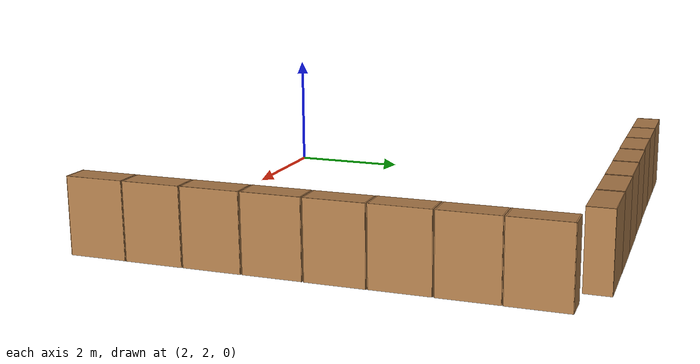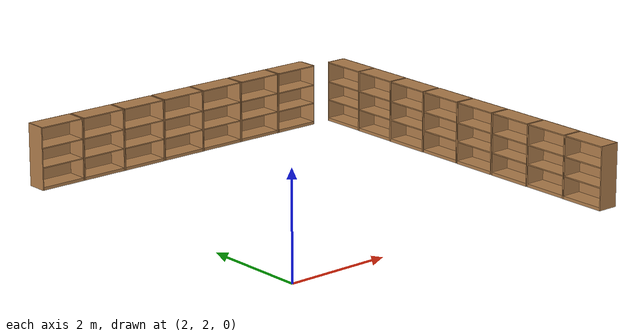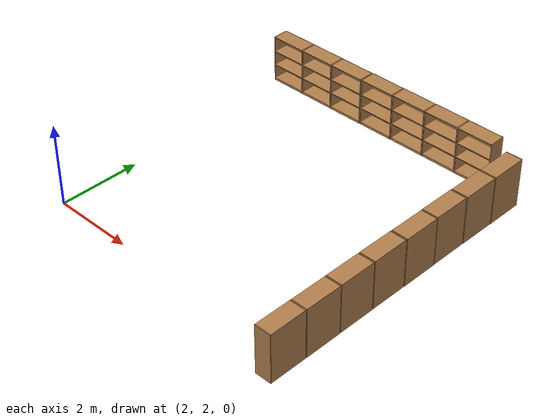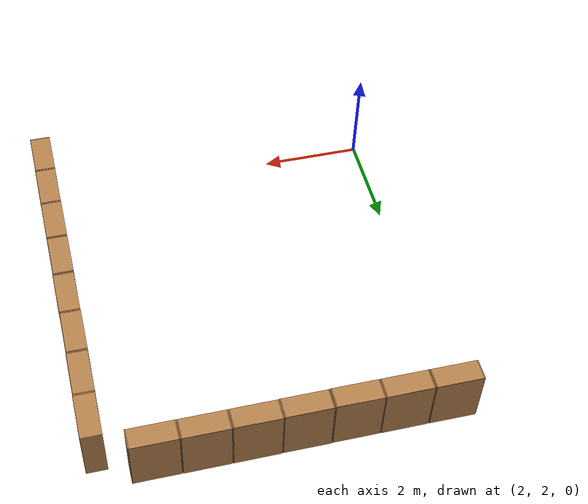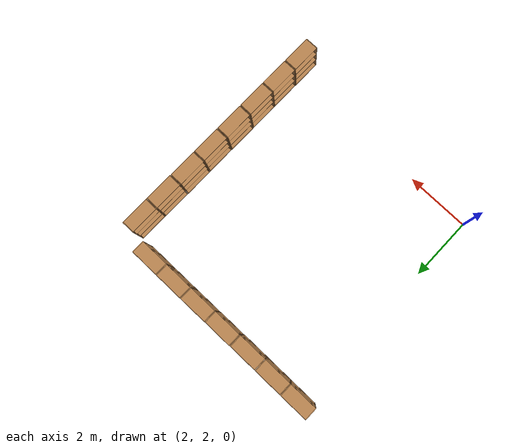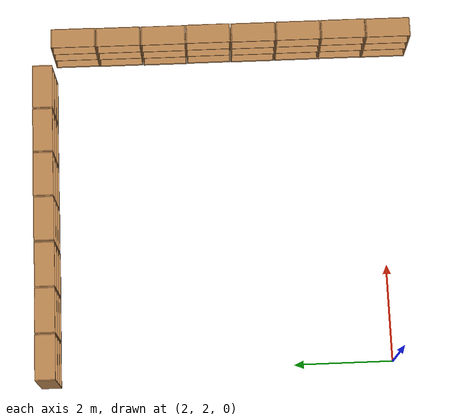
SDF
<sdf version="1.7">
 <world name="default">
  <model name="bookshelf_clone_clone_9">
   <static>1</static>
   <link name="link">
    <inertial><mass>1</mass></inertial>
    <collision name="back">
     <pose>0 0.005 0.6 0 -0 0</pose>
     <geometry><box><size>0.9 0.01 1.2</size></box></geometry>
    </collision>
    <visual name="visual1">
     <pose>0 0.005 0.6 0 -0 0</pose>
     <geometry><box><size>0.9 0.01 1.2</size></box></geometry>
     <material>
      <script><uri>file://media/materials/scripts/gazebo.material</uri><name>Gazebo/Wood</name></script>
     </material>
    </visual>
    <collision name="left_side">
     <pose>0.45 -0.195 0.6 0 -0 0</pose>
     <geometry><box><size>0.02 0.4 1.2</size></box></geometry>
    </collision>
    <visual name="visual2">
     <pose>0.45 -0.195 0.6 0 -0 0</pose>
     <geometry><box><size>0.02 0.4 1.2</size></box></geometry>
     <material>
      <script><uri>file://media/materials/scripts/gazebo.material</uri><name>Gazebo/Wood</name></script>
     </material>
    </visual>
    <collision name="right_side">
     <pose>-0.45 -0.195 0.6 0 -0 0</pose>
     <geometry><box><size>0.02 0.4 1.2</size></box></geometry>
    </collision>
    <visual name="visual3">
     <pose>-0.45 -0.195 0.6 0 -0 0</pose>
     <geometry><box><size>0.02 0.4 1.2</size></box></geometry>
     <material>
      <script><uri>file://media/materials/scripts/gazebo.material</uri><name>Gazebo/Wood</name></script>
     </material>
    </visual>
    <collision name="bottom">
     <pose>0 -0.195 0.03 0 -0 0</pose>
     <geometry><box><size>0.88 0.4 0.06</size></box></geometry>
    </collision>
    <visual name="visual4">
     <pose>0 -0.195 0.03 0 -0 0</pose>
     <geometry><box><size>0.88 0.4 0.06</size></box></geometry>
     <material>
      <script><uri>file://media/materials/scripts/gazebo.material</uri><name>Gazebo/Wood</name></script>
     </material>
    </visual>
    <collision name="top">
     <pose>0 -0.195 1.19 0 -0 0</pose>
     <geometry><box><size>0.88 0.4 0.02</size></box></geometry>
    </collision>
    <visual name="visual5">
     <pose>0 -0.195 1.19 0 -0 0</pose>
     <geometry><box><size>0.88 0.4 0.02</size></box></geometry>
     <material>
      <script><uri>file://media/materials/scripts/gazebo.material</uri><name>Gazebo/Wood</name></script>
     </material>
    </visual>
    <collision name="low_shelf">
     <pose>0 -0.195 0.43 0 -0 0</pose>
     <geometry><box><size>0.88 0.4 0.02</size></box></geometry>
    </collision>
    <visual name="visual6">
     <pose>0 -0.195 0.43 0 -0 0</pose>
     <geometry><box><size>0.88 0.4 0.02</size></box></geometry>
     <material>
      <script><uri>file://media/materials/scripts/gazebo.material</uri><name>Gazebo/Wood</name></script>
     </material>
    </visual>
    <collision name="high_shelf">
     <pose>0 -0.195 0.8 0 -0 0</pose>
     <geometry><box><size>0.88 0.4 0.02</size></box></geometry>
    </collision>
    <visual name="visual7">
     <pose>0 -0.195 0.8 0 -0 0</pose>
     <geometry><box><size>0.88 0.4 0.02</size></box></geometry>
     <material>
      <script><uri>file://media/materials/scripts/gazebo.material</uri><name>Gazebo/Wood</name></script>
     </material>
    </visual>
   </link>
   <pose>2.17586 9.11063 0 0 -0 0</pose>
  </model>
  <model name="bookshelf_clone_clone_10">
   <static>1</static>
   <link name="link">
    <inertial><mass>1</mass></inertial>
    <collision name="back">
     <pose>0 0.005 0.6 0 -0 0</pose>
     <geometry><box><size>0.9 0.01 1.2</size></box></geometry>
    </collision>
    <visual name="visual1">
     <pose>0 0.005 0.6 0 -0 0</pose>
     <geometry><box><size>0.9 0.01 1.2</size></box></geometry>
     <material>
      <script><uri>file://media/materials/scripts/gazebo.material</uri><name>Gazebo/Wood</name></script>
     </material>
    </visual>
    <collision name="left_side">
     <pose>0.45 -0.195 0.6 0 -0 0</pose>
     <geometry><box><size>0.02 0.4 1.2</size></box></geometry>
    </collision>
    <visual name="visual2">
     <pose>0.45 -0.195 0.6 0 -0 0</pose>
     <geometry><box><size>0.02 0.4 1.2</size></box></geometry>
     <material>
      <script><uri>file://media/materials/scripts/gazebo.material</uri><name>Gazebo/Wood</name></script>
     </material>
    </visual>
    <collision name="right_side">
     <pose>-0.45 -0.195 0.6 0 -0 0</pose>
     <geometry><box><size>0.02 0.4 1.2</size></box></geometry>
    </collision>
    <visual name="visual3">
     <pose>-0.45 -0.195 0.6 0 -0 0</pose>
     <geometry><box><size>0.02 0.4 1.2</size></box></geometry>
     <material>
      <script><uri>file://media/materials/scripts/gazebo.material</uri><name>Gazebo/Wood</name></script>
     </material>
    </visual>
    <collision name="bottom">
     <pose>0 -0.195 0.03 0 -0 0</pose>
     <geometry><box><size>0.88 0.4 0.06</size></box></geometry>
    </collision>
    <visual name="visual4">
     <pose>0 -0.195 0.03 0 -0 0</pose>
     <geometry><box><size>0.88 0.4 0.06</size></box></geometry>
     <material>
      <script><uri>file://media/materials/scripts/gazebo.material</uri><name>Gazebo/Wood</name></script>
     </material>
    </visual>
    <collision name="top">
     <pose>0 -0.195 1.19 0 -0 0</pose>
     <geometry><box><size>0.88 0.4 0.02</size></box></geometry>
    </collision>
    <visual name="visual5">
     <pose>0 -0.195 1.19 0 -0 0</pose>
     <geometry><box><size>0.88 0.4 0.02</size></box></geometry>
     <material>
      <script><uri>file://media/materials/scripts/gazebo.material</uri><name>Gazebo/Wood</name></script>
     </material>
    </visual>
    <collision name="low_shelf">
     <pose>0 -0.195 0.43 0 -0 0</pose>
     <geometry><box><size>0.88 0.4 0.02</size></box></geometry>
    </collision>
    <visual name="visual6">
     <pose>0 -0.195 0.43 0 -0 0</pose>
     <geometry><box><size>0.88 0.4 0.02</size></box></geometry>
     <material>
      <script><uri>file://media/materials/scripts/gazebo.material</uri><name>Gazebo/Wood</name></script>
     </material>
    </visual>
    <collision name="high_shelf">
     <pose>0 -0.195 0.8 0 -0 0</pose>
     <geometry><box><size>0.88 0.4 0.02</size></box></geometry>
    </collision>
    <visual name="visual7">
     <pose>0 -0.195 0.8 0 -0 0</pose>
     <geometry><box><size>0.88 0.4 0.02</size></box></geometry>
     <material>
      <script><uri>file://media/materials/scripts/gazebo.material</uri><name>Gazebo/Wood</name></script>
     </material>
    </visual>
   </link>
   <pose>3.10502 9.11011 0 0 -0 0</pose>
  </model>
  <model name="bookshelf_clone_clone_11">
   <static>1</static>
   <link name="link">
    <inertial><mass>1</mass></inertial>
    <collision name="back">
     <pose>0 0.005 0.6 0 -0 0</pose>
     <geometry><box><size>0.9 0.01 1.2</size></box></geometry>
    </collision>
    <visual name="visual1">
     <pose>0 0.005 0.6 0 -0 0</pose>
     <geometry><box><size>0.9 0.01 1.2</size></box></geometry>
     <material>
      <script><uri>file://media/materials/scripts/gazebo.material</uri><name>Gazebo/Wood</name></script>
     </material>
    </visual>
    <collision name="left_side">
     <pose>0.45 -0.195 0.6 0 -0 0</pose>
     <geometry><box><size>0.02 0.4 1.2</size></box></geometry>
    </collision>
    <visual name="visual2">
     <pose>0.45 -0.195 0.6 0 -0 0</pose>
     <geometry><box><size>0.02 0.4 1.2</size></box></geometry>
     <material>
      <script><uri>file://media/materials/scripts/gazebo.material</uri><name>Gazebo/Wood</name></script>
     </material>
    </visual>
    <collision name="right_side">
     <pose>-0.45 -0.195 0.6 0 -0 0</pose>
     <geometry><box><size>0.02 0.4 1.2</size></box></geometry>
    </collision>
    <visual name="visual3">
     <pose>-0.45 -0.195 0.6 0 -0 0</pose>
     <geometry><box><size>0.02 0.4 1.2</size></box></geometry>
     <material>
      <script><uri>file://media/materials/scripts/gazebo.material</uri><name>Gazebo/Wood</name></script>
     </material>
    </visual>
    <collision name="bottom">
     <pose>0 -0.195 0.03 0 -0 0</pose>
     <geometry><box><size>0.88 0.4 0.06</size></box></geometry>
    </collision>
    <visual name="visual4">
     <pose>0 -0.195 0.03 0 -0 0</pose>
     <geometry><box><size>0.88 0.4 0.06</size></box></geometry>
     <material>
      <script><uri>file://media/materials/scripts/gazebo.material</uri><name>Gazebo/Wood</name></script>
     </material>
    </visual>
    <collision name="top">
     <pose>0 -0.195 1.19 0 -0 0</pose>
     <geometry><box><size>0.88 0.4 0.02</size></box></geometry>
    </collision>
    <visual name="visual5">
     <pose>0 -0.195 1.19 0 -0 0</pose>
     <geometry><box><size>0.88 0.4 0.02</size></box></geometry>
     <material>
      <script><uri>file://media/materials/scripts/gazebo.material</uri><name>Gazebo/Wood</name></script>
     </material>
    </visual>
    <collision name="low_shelf">
     <pose>0 -0.195 0.43 0 -0 0</pose>
     <geometry><box><size>0.88 0.4 0.02</size></box></geometry>
    </collision>
    <visual name="visual6">
     <pose>0 -0.195 0.43 0 -0 0</pose>
     <geometry><box><size>0.88 0.4 0.02</size></box></geometry>
     <material>
      <script><uri>file://media/materials/scripts/gazebo.material</uri><name>Gazebo/Wood</name></script>
     </material>
    </visual>
    <collision name="high_shelf">
     <pose>0 -0.195 0.8 0 -0 0</pose>
     <geometry><box><size>0.88 0.4 0.02</size></box></geometry>
    </collision>
    <visual name="visual7">
     <pose>0 -0.195 0.8 0 -0 0</pose>
     <geometry><box><size>0.88 0.4 0.02</size></box></geometry>
     <material>
      <script><uri>file://media/materials/scripts/gazebo.material</uri><name>Gazebo/Wood</name></script>
     </material>
    </visual>
   </link>
   <pose>4.0312 9.10852 0 0 -0 0</pose>
  </model>
  <model name="bookshelf_clone_clone_12">
   <static>1</static>
   <link name="link">
    <inertial><mass>1</mass></inertial>
    <collision name="back">
     <pose>0 0.005 0.6 0 -0 0</pose>
     <geometry><box><size>0.9 0.01 1.2</size></box></geometry>
    </collision>
    <visual name="visual1">
     <pose>0 0.005 0.6 0 -0 0</pose>
     <geometry><box><size>0.9 0.01 1.2</size></box></geometry>
     <material>
      <script><uri>file://media/materials/scripts/gazebo.material</uri><name>Gazebo/Wood</name></script>
     </material>
    </visual>
    <collision name="left_side">
     <pose>0.45 -0.195 0.6 0 -0 0</pose>
     <geometry><box><size>0.02 0.4 1.2</size></box></geometry>
    </collision>
    <visual name="visual2">
     <pose>0.45 -0.195 0.6 0 -0 0</pose>
     <geometry><box><size>0.02 0.4 1.2</size></box></geometry>
     <material>
      <script><uri>file://media/materials/scripts/gazebo.material</uri><name>Gazebo/Wood</name></script>
     </material>
    </visual>
    <collision name="right_side">
     <pose>-0.45 -0.195 0.6 0 -0 0</pose>
     <geometry><box><size>0.02 0.4 1.2</size></box></geometry>
    </collision>
    <visual name="visual3">
     <pose>-0.45 -0.195 0.6 0 -0 0</pose>
     <geometry><box><size>0.02 0.4 1.2</size></box></geometry>
     <material>
      <script><uri>file://media/materials/scripts/gazebo.material</uri><name>Gazebo/Wood</name></script>
     </material>
    </visual>
    <collision name="bottom">
     <pose>0 -0.195 0.03 0 -0 0</pose>
     <geometry><box><size>0.88 0.4 0.06</size></box></geometry>
    </collision>
    <visual name="visual4">
     <pose>0 -0.195 0.03 0 -0 0</pose>
     <geometry><box><size>0.88 0.4 0.06</size></box></geometry>
     <material>
      <script><uri>file://media/materials/scripts/gazebo.material</uri><name>Gazebo/Wood</name></script>
     </material>
    </visual>
    <collision name="top">
     <pose>0 -0.195 1.19 0 -0 0</pose>
     <geometry><box><size>0.88 0.4 0.02</size></box></geometry>
    </collision>
    <visual name="visual5">
     <pose>0 -0.195 1.19 0 -0 0</pose>
     <geometry><box><size>0.88 0.4 0.02</size></box></geometry>
     <material>
      <script><uri>file://media/materials/scripts/gazebo.material</uri><name>Gazebo/Wood</name></script>
     </material>
    </visual>
    <collision name="low_shelf">
     <pose>0 -0.195 0.43 0 -0 0</pose>
     <geometry><box><size>0.88 0.4 0.02</size></box></geometry>
    </collision>
    <visual name="visual6">
     <pose>0 -0.195 0.43 0 -0 0</pose>
     <geometry><box><size>0.88 0.4 0.02</size></box></geometry>
     <material>
      <script><uri>file://media/materials/scripts/gazebo.material</uri><name>Gazebo/Wood</name></script>
     </material>
    </visual>
    <collision name="high_shelf">
     <pose>0 -0.195 0.8 0 -0 0</pose>
     <geometry><box><size>0.88 0.4 0.02</size></box></geometry>
    </collision>
    <visual name="visual7">
     <pose>0 -0.195 0.8 0 -0 0</pose>
     <geometry><box><size>0.88 0.4 0.02</size></box></geometry>
     <material>
      <script><uri>file://media/materials/scripts/gazebo.material</uri><name>Gazebo/Wood</name></script>
     </material>
    </visual>
   </link>
   <pose>4.96631 9.11548 0 0 -0 0</pose>
  </model>
  <model name="bookshelf_clone_clone_13">
   <static>1</static>
   <link name="link">
    <inertial><mass>1</mass></inertial>
    <collision name="back">
     <pose>0 0.005 0.6 0 -0 0</pose>
     <geometry><box><size>0.9 0.01 1.2</size></box></geometry>
    </collision>
    <visual name="visual1">
     <pose>0 0.005 0.6 0 -0 0</pose>
     <geometry><box><size>0.9 0.01 1.2</size></box></geometry>
     <material>
      <script><uri>file://media/materials/scripts/gazebo.material</uri><name>Gazebo/Wood</name></script>
     </material>
    </visual>
    <collision name="left_side">
     <pose>0.45 -0.195 0.6 0 -0 0</pose>
     <geometry><box><size>0.02 0.4 1.2</size></box></geometry>
    </collision>
    <visual name="visual2">
     <pose>0.45 -0.195 0.6 0 -0 0</pose>
     <geometry><box><size>0.02 0.4 1.2</size></box></geometry>
     <material>
      <script><uri>file://media/materials/scripts/gazebo.material</uri><name>Gazebo/Wood</name></script>
     </material>
    </visual>
    <collision name="right_side">
     <pose>-0.45 -0.195 0.6 0 -0 0</pose>
     <geometry><box><size>0.02 0.4 1.2</size></box></geometry>
    </collision>
    <visual name="visual3">
     <pose>-0.45 -0.195 0.6 0 -0 0</pose>
     <geometry><box><size>0.02 0.4 1.2</size></box></geometry>
     <material>
      <script><uri>file://media/materials/scripts/gazebo.material</uri><name>Gazebo/Wood</name></script>
     </material>
    </visual>
    <collision name="bottom">
     <pose>0 -0.195 0.03 0 -0 0</pose>
     <geometry><box><size>0.88 0.4 0.06</size></box></geometry>
    </collision>
    <visual name="visual4">
     <pose>0 -0.195 0.03 0 -0 0</pose>
     <geometry><box><size>0.88 0.4 0.06</size></box></geometry>
     <material>
      <script><uri>file://media/materials/scripts/gazebo.material</uri><name>Gazebo/Wood</name></script>
     </material>
    </visual>
    <collision name="top">
     <pose>0 -0.195 1.19 0 -0 0</pose>
     <geometry><box><size>0.88 0.4 0.02</size></box></geometry>
    </collision>
    <visual name="visual5">
     <pose>0 -0.195 1.19 0 -0 0</pose>
     <geometry><box><size>0.88 0.4 0.02</size></box></geometry>
     <material>
      <script><uri>file://media/materials/scripts/gazebo.material</uri><name>Gazebo/Wood</name></script>
     </material>
    </visual>
    <collision name="low_shelf">
     <pose>0 -0.195 0.43 0 -0 0</pose>
     <geometry><box><size>0.88 0.4 0.02</size></box></geometry>
    </collision>
    <visual name="visual6">
     <pose>0 -0.195 0.43 0 -0 0</pose>
     <geometry><box><size>0.88 0.4 0.02</size></box></geometry>
     <material>
      <script><uri>file://media/materials/scripts/gazebo.material</uri><name>Gazebo/Wood</name></script>
     </material>
    </visual>
    <collision name="high_shelf">
     <pose>0 -0.195 0.8 0 -0 0</pose>
     <geometry><box><size>0.88 0.4 0.02</size></box></geometry>
    </collision>
    <visual name="visual7">
     <pose>0 -0.195 0.8 0 -0 0</pose>
     <geometry><box><size>0.88 0.4 0.02</size></box></geometry>
     <material>
      <script><uri>file://media/materials/scripts/gazebo.material</uri><name>Gazebo/Wood</name></script>
     </material>
    </visual>
   </link>
   <pose>5.89275 9.12087 0 0 -0 0</pose>
  </model>
  <model name="bookshelf_clone_clone_14">
   <static>1</static>
   <link name="link">
    <inertial><mass>1</mass></inertial>
    <collision name="back">
     <pose>0 0.005 0.6 0 -0 0</pose>
     <geometry><box><size>0.9 0.01 1.2</size></box></geometry>
    </collision>
    <visual name="visual1">
     <pose>0 0.005 0.6 0 -0 0</pose>
     <geometry><box><size>0.9 0.01 1.2</size></box></geometry>
     <material>
      <script><uri>file://media/materials/scripts/gazebo.material</uri><name>Gazebo/Wood</name></script>
     </material>
    </visual>
    <collision name="left_side">
     <pose>0.45 -0.195 0.6 0 -0 0</pose>
     <geometry><box><size>0.02 0.4 1.2</size></box></geometry>
    </collision>
    <visual name="visual2">
     <pose>0.45 -0.195 0.6 0 -0 0</pose>
     <geometry><box><size>0.02 0.4 1.2</size></box></geometry>
     <material>
      <script><uri>file://media/materials/scripts/gazebo.material</uri><name>Gazebo/Wood</name></script>
     </material>
    </visual>
    <collision name="right_side">
     <pose>-0.45 -0.195 0.6 0 -0 0</pose>
     <geometry><box><size>0.02 0.4 1.2</size></box></geometry>
    </collision>
    <visual name="visual3">
     <pose>-0.45 -0.195 0.6 0 -0 0</pose>
     <geometry><box><size>0.02 0.4 1.2</size></box></geometry>
     <material>
      <script><uri>file://media/materials/scripts/gazebo.material</uri><name>Gazebo/Wood</name></script>
     </material>
    </visual>
    <collision name="bottom">
     <pose>0 -0.195 0.03 0 -0 0</pose>
     <geometry><box><size>0.88 0.4 0.06</size></box></geometry>
    </collision>
    <visual name="visual4">
     <pose>0 -0.195 0.03 0 -0 0</pose>
     <geometry><box><size>0.88 0.4 0.06</size></box></geometry>
     <material>
      <script><uri>file://media/materials/scripts/gazebo.material</uri><name>Gazebo/Wood</name></script>
     </material>
    </visual>
    <collision name="top">
     <pose>0 -0.195 1.19 0 -0 0</pose>
     <geometry><box><size>0.88 0.4 0.02</size></box></geometry>
    </collision>
    <visual name="visual5">
     <pose>0 -0.195 1.19 0 -0 0</pose>
     <geometry><box><size>0.88 0.4 0.02</size></box></geometry>
     <material>
      <script><uri>file://media/materials/scripts/gazebo.material</uri><name>Gazebo/Wood</name></script>
     </material>
    </visual>
    <collision name="low_shelf">
     <pose>0 -0.195 0.43 0 -0 0</pose>
     <geometry><box><size>0.88 0.4 0.02</size></box></geometry>
    </collision>
    <visual name="visual6">
     <pose>0 -0.195 0.43 0 -0 0</pose>
     <geometry><box><size>0.88 0.4 0.02</size></box></geometry>
     <material>
      <script><uri>file://media/materials/scripts/gazebo.material</uri><name>Gazebo/Wood</name></script>
     </material>
    </visual>
    <collision name="high_shelf">
     <pose>0 -0.195 0.8 0 -0 0</pose>
     <geometry><box><size>0.88 0.4 0.02</size></box></geometry>
    </collision>
    <visual name="visual7">
     <pose>0 -0.195 0.8 0 -0 0</pose>
     <geometry><box><size>0.88 0.4 0.02</size></box></geometry>
     <material>
      <script><uri>file://media/materials/scripts/gazebo.material</uri><name>Gazebo/Wood</name></script>
     </material>
    </visual>
   </link>
   <pose>6.82019 9.12289 0 0 -0 0</pose>
  </model>
  <model name="bookshelf_clone_clone_15">
   <static>1</static>
   <link name="link">
    <inertial><mass>1</mass></inertial>
    <collision name="back">
     <pose>0 0.005 0.6 0 -0 0</pose>
     <geometry><box><size>0.9 0.01 1.2</size></box></geometry>
    </collision>
    <visual name="visual1">
     <pose>0 0.005 0.6 0 -0 0</pose>
     <geometry><box><size>0.9 0.01 1.2</size></box></geometry>
     <material>
      <script><uri>file://media/materials/scripts/gazebo.material</uri><name>Gazebo/Wood</name></script>
     </material>
    </visual>
    <collision name="left_side">
     <pose>0.45 -0.195 0.6 0 -0 0</pose>
     <geometry><box><size>0.02 0.4 1.2</size></box></geometry>
    </collision>
    <visual name="visual2">
     <pose>0.45 -0.195 0.6 0 -0 0</pose>
     <geometry><box><size>0.02 0.4 1.2</size></box></geometry>
     <material>
      <script><uri>file://media/materials/scripts/gazebo.material</uri><name>Gazebo/Wood</name></script>
     </material>
    </visual>
    <collision name="right_side">
     <pose>-0.45 -0.195 0.6 0 -0 0</pose>
     <geometry><box><size>0.02 0.4 1.2</size></box></geometry>
    </collision>
    <visual name="visual3">
     <pose>-0.45 -0.195 0.6 0 -0 0</pose>
     <geometry><box><size>0.02 0.4 1.2</size></box></geometry>
     <material>
      <script><uri>file://media/materials/scripts/gazebo.material</uri><name>Gazebo/Wood</name></script>
     </material>
    </visual>
    <collision name="bottom">
     <pose>0 -0.195 0.03 0 -0 0</pose>
     <geometry><box><size>0.88 0.4 0.06</size></box></geometry>
    </collision>
    <visual name="visual4">
     <pose>0 -0.195 0.03 0 -0 0</pose>
     <geometry><box><size>0.88 0.4 0.06</size></box></geometry>
     <material>
      <script><uri>file://media/materials/scripts/gazebo.material</uri><name>Gazebo/Wood</name></script>
     </material>
    </visual>
    <collision name="top">
     <pose>0 -0.195 1.19 0 -0 0</pose>
     <geometry><box><size>0.88 0.4 0.02</size></box></geometry>
    </collision>
    <visual name="visual5">
     <pose>0 -0.195 1.19 0 -0 0</pose>
     <geometry><box><size>0.88 0.4 0.02</size></box></geometry>
     <material>
      <script><uri>file://media/materials/scripts/gazebo.material</uri><name>Gazebo/Wood</name></script>
     </material>
    </visual>
    <collision name="low_shelf">
     <pose>0 -0.195 0.43 0 -0 0</pose>
     <geometry><box><size>0.88 0.4 0.02</size></box></geometry>
    </collision>
    <visual name="visual6">
     <pose>0 -0.195 0.43 0 -0 0</pose>
     <geometry><box><size>0.88 0.4 0.02</size></box></geometry>
     <material>
      <script><uri>file://media/materials/scripts/gazebo.material</uri><name>Gazebo/Wood</name></script>
     </material>
    </visual>
    <collision name="high_shelf">
     <pose>0 -0.195 0.8 0 -0 0</pose>
     <geometry><box><size>0.88 0.4 0.02</size></box></geometry>
    </collision>
    <visual name="visual7">
     <pose>0 -0.195 0.8 0 -0 0</pose>
     <geometry><box><size>0.88 0.4 0.02</size></box></geometry>
     <material>
      <script><uri>file://media/materials/scripts/gazebo.material</uri><name>Gazebo/Wood</name></script>
     </material>
    </visual>
   </link>
   <pose>7.74827 9.12085 0 0 -0 0</pose>
  </model>
  <model name="bookshelf_clone_clone_15_clone">
   <static>1</static>
   <link name="link">
    <inertial><mass>1</mass></inertial>
    <collision name="back">
     <pose>0 0.005 0.6 0 -0 0</pose>
     <geometry><box><size>0.9 0.01 1.2</size></box></geometry>
    </collision>
    <visual name="visual1">
     <pose>0 0.005 0.6 0 -0 0</pose>
     <geometry><box><size>0.9 0.01 1.2</size></box></geometry>
     <material>
      <script><uri>file://media/materials/scripts/gazebo.material</uri><name>Gazebo/Wood</name></script>
     </material>
    </visual>
    <collision name="left_side">
     <pose>0.45 -0.195 0.6 0 -0 0</pose>
     <geometry><box><size>0.02 0.4 1.2</size></box></geometry>
    </collision>
    <visual name="visual2">
     <pose>0.45 -0.195 0.6 0 -0 0</pose>
     <geometry><box><size>0.02 0.4 1.2</size></box></geometry>
     <material>
      <script><uri>file://media/materials/scripts/gazebo.material</uri><name>Gazebo/Wood</name></script>
     </material>
    </visual>
    <collision name="right_side">
     <pose>-0.45 -0.195 0.6 0 -0 0</pose>
     <geometry><box><size>0.02 0.4 1.2</size></box></geometry>
    </collision>
    <visual name="visual3">
     <pose>-0.45 -0.195 0.6 0 -0 0</pose>
     <geometry><box><size>0.02 0.4 1.2</size></box></geometry>
     <material>
      <script><uri>file://media/materials/scripts/gazebo.material</uri><name>Gazebo/Wood</name></script>
     </material>
    </visual>
    <collision name="bottom">
     <pose>0 -0.195 0.03 0 -0 0</pose>
     <geometry><box><size>0.88 0.4 0.06</size></box></geometry>
    </collision>
    <visual name="visual4">
     <pose>0 -0.195 0.03 0 -0 0</pose>
     <geometry><box><size>0.88 0.4 0.06</size></box></geometry>
     <material>
      <script><uri>file://media/materials/scripts/gazebo.material</uri><name>Gazebo/Wood</name></script>
     </material>
    </visual>
    <collision name="top">
     <pose>0 -0.195 1.19 0 -0 0</pose>
     <geometry><box><size>0.88 0.4 0.02</size></box></geometry>
    </collision>
    <visual name="visual5">
     <pose>0 -0.195 1.19 0 -0 0</pose>
     <geometry><box><size>0.88 0.4 0.02</size></box></geometry>
     <material>
      <script><uri>file://media/materials/scripts/gazebo.material</uri><name>Gazebo/Wood</name></script>
     </material>
    </visual>
    <collision name="low_shelf">
     <pose>0 -0.195 0.43 0 -0 0</pose>
     <geometry><box><size>0.88 0.4 0.02</size></box></geometry>
    </collision>
    <visual name="visual6">
     <pose>0 -0.195 0.43 0 -0 0</pose>
     <geometry><box><size>0.88 0.4 0.02</size></box></geometry>
     <material>
      <script><uri>file://media/materials/scripts/gazebo.material</uri><name>Gazebo/Wood</name></script>
     </material>
    </visual>
    <collision name="high_shelf">
     <pose>0 -0.195 0.8 0 -0 0</pose>
     <geometry><box><size>0.88 0.4 0.02</size></box></geometry>
    </collision>
    <visual name="visual7">
     <pose>0 -0.195 0.8 0 -0 0</pose>
     <geometry><box><size>0.88 0.4 0.02</size></box></geometry>
     <material>
      <script><uri>file://media/materials/scripts/gazebo.material</uri><name>Gazebo/Wood</name></script>
     </material>
    </visual>
   </link>
   <pose>8.97616 8.28716 0 0 0 -1.57173</pose>
  </model>
  <model name="bookshelf_clone_clone_15_clone_clone">
   <static>1</static>
   <link name="link">
    <inertial><mass>1</mass></inertial>
    <collision name="back">
     <pose>0 0.005 0.6 0 -0 0</pose>
     <geometry><box><size>0.9 0.01 1.2</size></box></geometry>
    </collision>
    <visual name="visual1">
     <pose>0 0.005 0.6 0 -0 0</pose>
     <geometry><box><size>0.9 0.01 1.2</size></box></geometry>
     <material>
      <script><uri>file://media/materials/scripts/gazebo.material</uri><name>Gazebo/Wood</name></script>
     </material>
    </visual>
    <collision name="left_side">
     <pose>0.45 -0.195 0.6 0 -0 0</pose>
     <geometry><box><size>0.02 0.4 1.2</size></box></geometry>
    </collision>
    <visual name="visual2">
     <pose>0.45 -0.195 0.6 0 -0 0</pose>
     <geometry><box><size>0.02 0.4 1.2</size></box></geometry>
     <material>
      <script><uri>file://media/materials/scripts/gazebo.material</uri><name>Gazebo/Wood</name></script>
     </material>
    </visual>
    <collision name="right_side">
     <pose>-0.45 -0.195 0.6 0 -0 0</pose>
     <geometry><box><size>0.02 0.4 1.2</size></box></geometry>
    </collision>
    <visual name="visual3">
     <pose>-0.45 -0.195 0.6 0 -0 0</pose>
     <geometry><box><size>0.02 0.4 1.2</size></box></geometry>
     <material>
      <script><uri>file://media/materials/scripts/gazebo.material</uri><name>Gazebo/Wood</name></script>
     </material>
    </visual>
    <collision name="bottom">
     <pose>0 -0.195 0.03 0 -0 0</pose>
     <geometry><box><size>0.88 0.4 0.06</size></box></geometry>
    </collision>
    <visual name="visual4">
     <pose>0 -0.195 0.03 0 -0 0</pose>
     <geometry><box><size>0.88 0.4 0.06</size></box></geometry>
     <material>
      <script><uri>file://media/materials/scripts/gazebo.material</uri><name>Gazebo/Wood</name></script>
     </material>
    </visual>
    <collision name="top">
     <pose>0 -0.195 1.19 0 -0 0</pose>
     <geometry><box><size>0.88 0.4 0.02</size></box></geometry>
    </collision>
    <visual name="visual5">
     <pose>0 -0.195 1.19 0 -0 0</pose>
     <geometry><box><size>0.88 0.4 0.02</size></box></geometry>
     <material>
      <script><uri>file://media/materials/scripts/gazebo.material</uri><name>Gazebo/Wood</name></script>
     </material>
    </visual>
    <collision name="low_shelf">
     <pose>0 -0.195 0.43 0 -0 0</pose>
     <geometry><box><size>0.88 0.4 0.02</size></box></geometry>
    </collision>
    <visual name="visual6">
     <pose>0 -0.195 0.43 0 -0 0</pose>
     <geometry><box><size>0.88 0.4 0.02</size></box></geometry>
     <material>
      <script><uri>file://media/materials/scripts/gazebo.material</uri><name>Gazebo/Wood</name></script>
     </material>
    </visual>
    <collision name="high_shelf">
     <pose>0 -0.195 0.8 0 -0 0</pose>
     <geometry><box><size>0.88 0.4 0.02</size></box></geometry>
    </collision>
    <visual name="visual7">
     <pose>0 -0.195 0.8 0 -0 0</pose>
     <geometry><box><size>0.88 0.4 0.02</size></box></geometry>
     <material>
      <script><uri>file://media/materials/scripts/gazebo.material</uri><name>Gazebo/Wood</name></script>
     </material>
    </visual>
   </link>
   <pose>8.96953 7.36044 0 0 0 -1.57173</pose>
  </model>
  <model name="bookshelf_clone_clone_15_clone_clone_0">
   <static>1</static>
   <link name="link">
    <inertial><mass>1</mass></inertial>
    <collision name="back">
     <pose>0 0.005 0.6 0 -0 0</pose>
     <geometry><box><size>0.9 0.01 1.2</size></box></geometry>
    </collision>
    <visual name="visual1">
     <pose>0 0.005 0.6 0 -0 0</pose>
     <geometry><box><size>0.9 0.01 1.2</size></box></geometry>
     <material>
      <script><uri>file://media/materials/scripts/gazebo.material</uri><name>Gazebo/Wood</name></script>
     </material>
    </visual>
    <collision name="left_side">
     <pose>0.45 -0.195 0.6 0 -0 0</pose>
     <geometry><box><size>0.02 0.4 1.2</size></box></geometry>
    </collision>
    <visual name="visual2">
     <pose>0.45 -0.195 0.6 0 -0 0</pose>
     <geometry><box><size>0.02 0.4 1.2</size></box></geometry>
     <material>
      <script><uri>file://media/materials/scripts/gazebo.material</uri><name>Gazebo/Wood</name></script>
     </material>
    </visual>
    <collision name="right_side">
     <pose>-0.45 -0.195 0.6 0 -0 0</pose>
     <geometry><box><size>0.02 0.4 1.2</size></box></geometry>
    </collision>
    <visual name="visual3">
     <pose>-0.45 -0.195 0.6 0 -0 0</pose>
     <geometry><box><size>0.02 0.4 1.2</size></box></geometry>
     <material>
      <script><uri>file://media/materials/scripts/gazebo.material</uri><name>Gazebo/Wood</name></script>
     </material>
    </visual>
    <collision name="bottom">
     <pose>0 -0.195 0.03 0 -0 0</pose>
     <geometry><box><size>0.88 0.4 0.06</size></box></geometry>
    </collision>
    <visual name="visual4">
     <pose>0 -0.195 0.03 0 -0 0</pose>
     <geometry><box><size>0.88 0.4 0.06</size></box></geometry>
     <material>
      <script><uri>file://media/materials/scripts/gazebo.material</uri><name>Gazebo/Wood</name></script>
     </material>
    </visual>
    <collision name="top">
     <pose>0 -0.195 1.19 0 -0 0</pose>
     <geometry><box><size>0.88 0.4 0.02</size></box></geometry>
    </collision>
    <visual name="visual5">
     <pose>0 -0.195 1.19 0 -0 0</pose>
     <geometry><box><size>0.88 0.4 0.02</size></box></geometry>
     <material>
      <script><uri>file://media/materials/scripts/gazebo.material</uri><name>Gazebo/Wood</name></script>
     </material>
    </visual>
    <collision name="low_shelf">
     <pose>0 -0.195 0.43 0 -0 0</pose>
     <geometry><box><size>0.88 0.4 0.02</size></box></geometry>
    </collision>
    <visual name="visual6">
     <pose>0 -0.195 0.43 0 -0 0</pose>
     <geometry><box><size>0.88 0.4 0.02</size></box></geometry>
     <material>
      <script><uri>file://media/materials/scripts/gazebo.material</uri><name>Gazebo/Wood</name></script>
     </material>
    </visual>
    <collision name="high_shelf">
     <pose>0 -0.195 0.8 0 -0 0</pose>
     <geometry><box><size>0.88 0.4 0.02</size></box></geometry>
    </collision>
    <visual name="visual7">
     <pose>0 -0.195 0.8 0 -0 0</pose>
     <geometry><box><size>0.88 0.4 0.02</size></box></geometry>
     <material>
      <script><uri>file://media/materials/scripts/gazebo.material</uri><name>Gazebo/Wood</name></script>
     </material>
    </visual>
   </link>
   <pose>8.96294 6.42796 0 0 0 -1.57173</pose>
  </model>
  <model name="bookshelf_clone_clone_15_clone_clone_1">
   <static>1</static>
   <link name="link">
    <inertial><mass>1</mass></inertial>
    <collision name="back">
     <pose>0 0.005 0.6 0 -0 0</pose>
     <geometry><box><size>0.9 0.01 1.2</size></box></geometry>
    </collision>
    <visual name="visual1">
     <pose>0 0.005 0.6 0 -0 0</pose>
     <geometry><box><size>0.9 0.01 1.2</size></box></geometry>
     <material>
      <script><uri>file://media/materials/scripts/gazebo.material</uri><name>Gazebo/Wood</name></script>
     </material>
    </visual>
    <collision name="left_side">
     <pose>0.45 -0.195 0.6 0 -0 0</pose>
     <geometry><box><size>0.02 0.4 1.2</size></box></geometry>
    </collision>
    <visual name="visual2">
     <pose>0.45 -0.195 0.6 0 -0 0</pose>
     <geometry><box><size>0.02 0.4 1.2</size></box></geometry>
     <material>
      <script><uri>file://media/materials/scripts/gazebo.material</uri><name>Gazebo/Wood</name></script>
     </material>
    </visual>
    <collision name="right_side">
     <pose>-0.45 -0.195 0.6 0 -0 0</pose>
     <geometry><box><size>0.02 0.4 1.2</size></box></geometry>
    </collision>
    <visual name="visual3">
     <pose>-0.45 -0.195 0.6 0 -0 0</pose>
     <geometry><box><size>0.02 0.4 1.2</size></box></geometry>
     <material>
      <script><uri>file://media/materials/scripts/gazebo.material</uri><name>Gazebo/Wood</name></script>
     </material>
    </visual>
    <collision name="bottom">
     <pose>0 -0.195 0.03 0 -0 0</pose>
     <geometry><box><size>0.88 0.4 0.06</size></box></geometry>
    </collision>
    <visual name="visual4">
     <pose>0 -0.195 0.03 0 -0 0</pose>
     <geometry><box><size>0.88 0.4 0.06</size></box></geometry>
     <material>
      <script><uri>file://media/materials/scripts/gazebo.material</uri><name>Gazebo/Wood</name></script>
     </material>
    </visual>
    <collision name="top">
     <pose>0 -0.195 1.19 0 -0 0</pose>
     <geometry><box><size>0.88 0.4 0.02</size></box></geometry>
    </collision>
    <visual name="visual5">
     <pose>0 -0.195 1.19 0 -0 0</pose>
     <geometry><box><size>0.88 0.4 0.02</size></box></geometry>
     <material>
      <script><uri>file://media/materials/scripts/gazebo.material</uri><name>Gazebo/Wood</name></script>
     </material>
    </visual>
    <collision name="low_shelf">
     <pose>0 -0.195 0.43 0 -0 0</pose>
     <geometry><box><size>0.88 0.4 0.02</size></box></geometry>
    </collision>
    <visual name="visual6">
     <pose>0 -0.195 0.43 0 -0 0</pose>
     <geometry><box><size>0.88 0.4 0.02</size></box></geometry>
     <material>
      <script><uri>file://media/materials/scripts/gazebo.material</uri><name>Gazebo/Wood</name></script>
     </material>
    </visual>
    <collision name="high_shelf">
     <pose>0 -0.195 0.8 0 -0 0</pose>
     <geometry><box><size>0.88 0.4 0.02</size></box></geometry>
    </collision>
    <visual name="visual7">
     <pose>0 -0.195 0.8 0 -0 0</pose>
     <geometry><box><size>0.88 0.4 0.02</size></box></geometry>
     <material>
      <script><uri>file://media/materials/scripts/gazebo.material</uri><name>Gazebo/Wood</name></script>
     </material>
    </visual>
   </link>
   <pose>8.96767 5.49948 0 0 0 -1.57173</pose>
  </model>
  <model name="bookshelf_clone_clone_15_clone_clone_2">
   <static>1</static>
   <link name="link">
    <inertial><mass>1</mass></inertial>
    <collision name="back">
     <pose>0 0.005 0.6 0 -0 0</pose>
     <geometry><box><size>0.9 0.01 1.2</size></box></geometry>
    </collision>
    <visual name="visual1">
     <pose>0 0.005 0.6 0 -0 0</pose>
     <geometry><box><size>0.9 0.01 1.2</size></box></geometry>
     <material>
      <script><uri>file://media/materials/scripts/gazebo.material</uri><name>Gazebo/Wood</name></script>
     </material>
    </visual>
    <collision name="left_side">
     <pose>0.45 -0.195 0.6 0 -0 0</pose>
     <geometry><box><size>0.02 0.4 1.2</size></box></geometry>
    </collision>
    <visual name="visual2">
     <pose>0.45 -0.195 0.6 0 -0 0</pose>
     <geometry><box><size>0.02 0.4 1.2</size></box></geometry>
     <material>
      <script><uri>file://media/materials/scripts/gazebo.material</uri><name>Gazebo/Wood</name></script>
     </material>
    </visual>
    <collision name="right_side">
     <pose>-0.45 -0.195 0.6 0 -0 0</pose>
     <geometry><box><size>0.02 0.4 1.2</size></box></geometry>
    </collision>
    <visual name="visual3">
     <pose>-0.45 -0.195 0.6 0 -0 0</pose>
     <geometry><box><size>0.02 0.4 1.2</size></box></geometry>
     <material>
      <script><uri>file://media/materials/scripts/gazebo.material</uri><name>Gazebo/Wood</name></script>
     </material>
    </visual>
    <collision name="bottom">
     <pose>0 -0.195 0.03 0 -0 0</pose>
     <geometry><box><size>0.88 0.4 0.06</size></box></geometry>
    </collision>
    <visual name="visual4">
     <pose>0 -0.195 0.03 0 -0 0</pose>
     <geometry><box><size>0.88 0.4 0.06</size></box></geometry>
     <material>
      <script><uri>file://media/materials/scripts/gazebo.material</uri><name>Gazebo/Wood</name></script>
     </material>
    </visual>
    <collision name="top">
     <pose>0 -0.195 1.19 0 -0 0</pose>
     <geometry><box><size>0.88 0.4 0.02</size></box></geometry>
    </collision>
    <visual name="visual5">
     <pose>0 -0.195 1.19 0 -0 0</pose>
     <geometry><box><size>0.88 0.4 0.02</size></box></geometry>
     <material>
      <script><uri>file://media/materials/scripts/gazebo.material</uri><name>Gazebo/Wood</name></script>
     </material>
    </visual>
    <collision name="low_shelf">
     <pose>0 -0.195 0.43 0 -0 0</pose>
     <geometry><box><size>0.88 0.4 0.02</size></box></geometry>
    </collision>
    <visual name="visual6">
     <pose>0 -0.195 0.43 0 -0 0</pose>
     <geometry><box><size>0.88 0.4 0.02</size></box></geometry>
     <material>
      <script><uri>file://media/materials/scripts/gazebo.material</uri><name>Gazebo/Wood</name></script>
     </material>
    </visual>
    <collision name="high_shelf">
     <pose>0 -0.195 0.8 0 -0 0</pose>
     <geometry><box><size>0.88 0.4 0.02</size></box></geometry>
    </collision>
    <visual name="visual7">
     <pose>0 -0.195 0.8 0 -0 0</pose>
     <geometry><box><size>0.88 0.4 0.02</size></box></geometry>
     <material>
      <script><uri>file://media/materials/scripts/gazebo.material</uri><name>Gazebo/Wood</name></script>
     </material>
    </visual>
   </link>
   <pose>8.96208 4.56425 0 0 0 -1.57173</pose>
  </model>
  <model name="bookshelf_clone_clone_15_clone_clone_3">
   <static>1</static>
   <link name="link">
    <inertial><mass>1</mass></inertial>
    <collision name="back">
     <pose>0 0.005 0.6 0 -0 0</pose>
     <geometry><box><size>0.9 0.01 1.2</size></box></geometry>
    </collision>
    <visual name="visual1">
     <pose>0 0.005 0.6 0 -0 0</pose>
     <geometry><box><size>0.9 0.01 1.2</size></box></geometry>
     <material>
      <script><uri>file://media/materials/scripts/gazebo.material</uri><name>Gazebo/Wood</name></script>
     </material>
    </visual>
    <collision name="left_side">
     <pose>0.45 -0.195 0.6 0 -0 0</pose>
     <geometry><box><size>0.02 0.4 1.2</size></box></geometry>
    </collision>
    <visual name="visual2">
     <pose>0.45 -0.195 0.6 0 -0 0</pose>
     <geometry><box><size>0.02 0.4 1.2</size></box></geometry>
     <material>
      <script><uri>file://media/materials/scripts/gazebo.material</uri><name>Gazebo/Wood</name></script>
     </material>
    </visual>
    <collision name="right_side">
     <pose>-0.45 -0.195 0.6 0 -0 0</pose>
     <geometry><box><size>0.02 0.4 1.2</size></box></geometry>
    </collision>
    <visual name="visual3">
     <pose>-0.45 -0.195 0.6 0 -0 0</pose>
     <geometry><box><size>0.02 0.4 1.2</size></box></geometry>
     <material>
      <script><uri>file://media/materials/scripts/gazebo.material</uri><name>Gazebo/Wood</name></script>
     </material>
    </visual>
    <collision name="bottom">
     <pose>0 -0.195 0.03 0 -0 0</pose>
     <geometry><box><size>0.88 0.4 0.06</size></box></geometry>
    </collision>
    <visual name="visual4">
     <pose>0 -0.195 0.03 0 -0 0</pose>
     <geometry><box><size>0.88 0.4 0.06</size></box></geometry>
     <material>
      <script><uri>file://media/materials/scripts/gazebo.material</uri><name>Gazebo/Wood</name></script>
     </material>
    </visual>
    <collision name="top">
     <pose>0 -0.195 1.19 0 -0 0</pose>
     <geometry><box><size>0.88 0.4 0.02</size></box></geometry>
    </collision>
    <visual name="visual5">
     <pose>0 -0.195 1.19 0 -0 0</pose>
     <geometry><box><size>0.88 0.4 0.02</size></box></geometry>
     <material>
      <script><uri>file://media/materials/scripts/gazebo.material</uri><name>Gazebo/Wood</name></script>
     </material>
    </visual>
    <collision name="low_shelf">
     <pose>0 -0.195 0.43 0 -0 0</pose>
     <geometry><box><size>0.88 0.4 0.02</size></box></geometry>
    </collision>
    <visual name="visual6">
     <pose>0 -0.195 0.43 0 -0 0</pose>
     <geometry><box><size>0.88 0.4 0.02</size></box></geometry>
     <material>
      <script><uri>file://media/materials/scripts/gazebo.material</uri><name>Gazebo/Wood</name></script>
     </material>
    </visual>
    <collision name="high_shelf">
     <pose>0 -0.195 0.8 0 -0 0</pose>
     <geometry><box><size>0.88 0.4 0.02</size></box></geometry>
    </collision>
    <visual name="visual7">
     <pose>0 -0.195 0.8 0 -0 0</pose>
     <geometry><box><size>0.88 0.4 0.02</size></box></geometry>
     <material>
      <script><uri>file://media/materials/scripts/gazebo.material</uri><name>Gazebo/Wood</name></script>
     </material>
    </visual>
   </link>
   <pose>8.96364 3.63134 0 0 0 -1.57173</pose>
  </model>
  <model name="bookshelf_clone_clone_15_clone_clone_4">
   <static>1</static>
   <link name="link">
    <inertial><mass>1</mass></inertial>
    <collision name="back">
     <pose>0 0.005 0.6 0 -0 0</pose>
     <geometry><box><size>0.9 0.01 1.2</size></box></geometry>
    </collision>
    <visual name="visual1">
     <pose>0 0.005 0.6 0 -0 0</pose>
     <geometry><box><size>0.9 0.01 1.2</size></box></geometry>
     <material>
      <script><uri>file://media/materials/scripts/gazebo.material</uri><name>Gazebo/Wood</name></script>
     </material>
    </visual>
    <collision name="left_side">
     <pose>0.45 -0.195 0.6 0 -0 0</pose>
     <geometry><box><size>0.02 0.4 1.2</size></box></geometry>
    </collision>
    <visual name="visual2">
     <pose>0.45 -0.195 0.6 0 -0 0</pose>
     <geometry><box><size>0.02 0.4 1.2</size></box></geometry>
     <material>
      <script><uri>file://media/materials/scripts/gazebo.material</uri><name>Gazebo/Wood</name></script>
     </material>
    </visual>
    <collision name="right_side">
     <pose>-0.45 -0.195 0.6 0 -0 0</pose>
     <geometry><box><size>0.02 0.4 1.2</size></box></geometry>
    </collision>
    <visual name="visual3">
     <pose>-0.45 -0.195 0.6 0 -0 0</pose>
     <geometry><box><size>0.02 0.4 1.2</size></box></geometry>
     <material>
      <script><uri>file://media/materials/scripts/gazebo.material</uri><name>Gazebo/Wood</name></script>
     </material>
    </visual>
    <collision name="bottom">
     <pose>0 -0.195 0.03 0 -0 0</pose>
     <geometry><box><size>0.88 0.4 0.06</size></box></geometry>
    </collision>
    <visual name="visual4">
     <pose>0 -0.195 0.03 0 -0 0</pose>
     <geometry><box><size>0.88 0.4 0.06</size></box></geometry>
     <material>
      <script><uri>file://media/materials/scripts/gazebo.material</uri><name>Gazebo/Wood</name></script>
     </material>
    </visual>
    <collision name="top">
     <pose>0 -0.195 1.19 0 -0 0</pose>
     <geometry><box><size>0.88 0.4 0.02</size></box></geometry>
    </collision>
    <visual name="visual5">
     <pose>0 -0.195 1.19 0 -0 0</pose>
     <geometry><box><size>0.88 0.4 0.02</size></box></geometry>
     <material>
      <script><uri>file://media/materials/scripts/gazebo.material</uri><name>Gazebo/Wood</name></script>
     </material>
    </visual>
    <collision name="low_shelf">
     <pose>0 -0.195 0.43 0 -0 0</pose>
     <geometry><box><size>0.88 0.4 0.02</size></box></geometry>
    </collision>
    <visual name="visual6">
     <pose>0 -0.195 0.43 0 -0 0</pose>
     <geometry><box><size>0.88 0.4 0.02</size></box></geometry>
     <material>
      <script><uri>file://media/materials/scripts/gazebo.material</uri><name>Gazebo/Wood</name></script>
     </material>
    </visual>
    <collision name="high_shelf">
     <pose>0 -0.195 0.8 0 -0 0</pose>
     <geometry><box><size>0.88 0.4 0.02</size></box></geometry>
    </collision>
    <visual name="visual7">
     <pose>0 -0.195 0.8 0 -0 0</pose>
     <geometry><box><size>0.88 0.4 0.02</size></box></geometry>
     <material>
      <script><uri>file://media/materials/scripts/gazebo.material</uri><name>Gazebo/Wood</name></script>
     </material>
    </visual>
   </link>
   <pose>8.96534 2.7029 0 0 0 -1.57173</pose>
  </model>
  <model name="bookshelf_clone_clone_15_clone_clone_5">
   <static>1</static>
   <link name="link">
    <inertial><mass>1</mass></inertial>
    <collision name="back">
     <pose>0 0.005 0.6 0 -0 0</pose>
     <geometry><box><size>0.9 0.01 1.2</size></box></geometry>
    </collision>
    <visual name="visual1">
     <pose>0 0.005 0.6 0 -0 0</pose>
     <geometry><box><size>0.9 0.01 1.2</size></box></geometry>
     <material>
      <script><uri>file://media/materials/scripts/gazebo.material</uri><name>Gazebo/Wood</name></script>
     </material>
    </visual>
    <collision name="left_side">
     <pose>0.45 -0.195 0.6 0 -0 0</pose>
     <geometry><box><size>0.02 0.4 1.2</size></box></geometry>
    </collision>
    <visual name="visual2">
     <pose>0.45 -0.195 0.6 0 -0 0</pose>
     <geometry><box><size>0.02 0.4 1.2</size></box></geometry>
     <material>
      <script><uri>file://media/materials/scripts/gazebo.material</uri><name>Gazebo/Wood</name></script>
     </material>
    </visual>
    <collision name="right_side">
     <pose>-0.45 -0.195 0.6 0 -0 0</pose>
     <geometry><box><size>0.02 0.4 1.2</size></box></geometry>
    </collision>
    <visual name="visual3">
     <pose>-0.45 -0.195 0.6 0 -0 0</pose>
     <geometry><box><size>0.02 0.4 1.2</size></box></geometry>
     <material>
      <script><uri>file://media/materials/scripts/gazebo.material</uri><name>Gazebo/Wood</name></script>
     </material>
    </visual>
    <collision name="bottom">
     <pose>0 -0.195 0.03 0 -0 0</pose>
     <geometry><box><size>0.88 0.4 0.06</size></box></geometry>
    </collision>
    <visual name="visual4">
     <pose>0 -0.195 0.03 0 -0 0</pose>
     <geometry><box><size>0.88 0.4 0.06</size></box></geometry>
     <material>
      <script><uri>file://media/materials/scripts/gazebo.material</uri><name>Gazebo/Wood</name></script>
     </material>
    </visual>
    <collision name="top">
     <pose>0 -0.195 1.19 0 -0 0</pose>
     <geometry><box><size>0.88 0.4 0.02</size></box></geometry>
    </collision>
    <visual name="visual5">
     <pose>0 -0.195 1.19 0 -0 0</pose>
     <geometry><box><size>0.88 0.4 0.02</size></box></geometry>
     <material>
      <script><uri>file://media/materials/scripts/gazebo.material</uri><name>Gazebo/Wood</name></script>
     </material>
    </visual>
    <collision name="low_shelf">
     <pose>0 -0.195 0.43 0 -0 0</pose>
     <geometry><box><size>0.88 0.4 0.02</size></box></geometry>
    </collision>
    <visual name="visual6">
     <pose>0 -0.195 0.43 0 -0 0</pose>
     <geometry><box><size>0.88 0.4 0.02</size></box></geometry>
     <material>
      <script><uri>file://media/materials/scripts/gazebo.material</uri><name>Gazebo/Wood</name></script>
     </material>
    </visual>
    <collision name="high_shelf">
     <pose>0 -0.195 0.8 0 -0 0</pose>
     <geometry><box><size>0.88 0.4 0.02</size></box></geometry>
    </collision>
    <visual name="visual7">
     <pose>0 -0.195 0.8 0 -0 0</pose>
     <geometry><box><size>0.88 0.4 0.02</size></box></geometry>
     <material>
      <script><uri>file://media/materials/scripts/gazebo.material</uri><name>Gazebo/Wood</name></script>
     </material>
    </visual>
   </link>
   <pose>8.96151 1.77485 0 0 0 -1.57173</pose>
  </model>
 </world>
</sdf>
